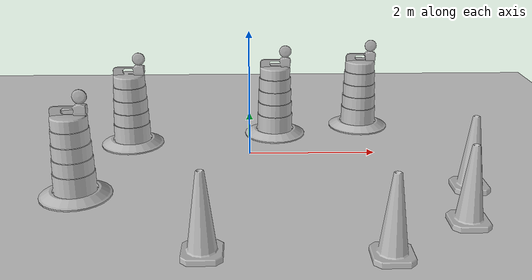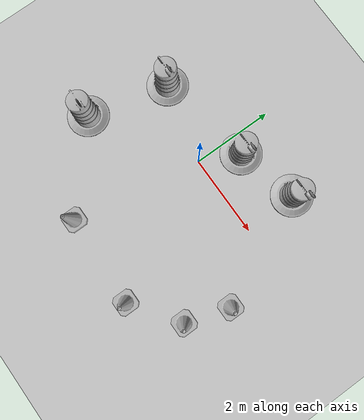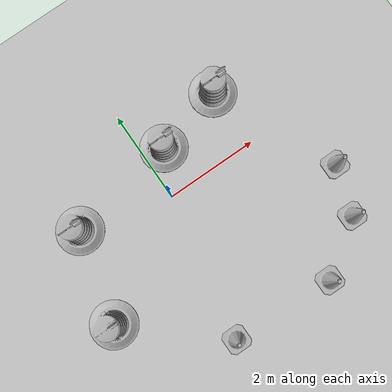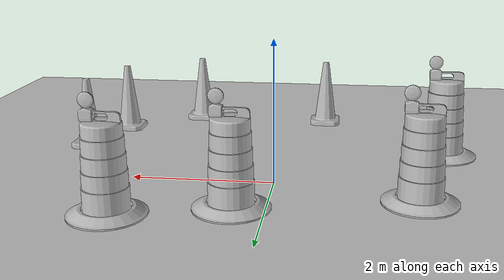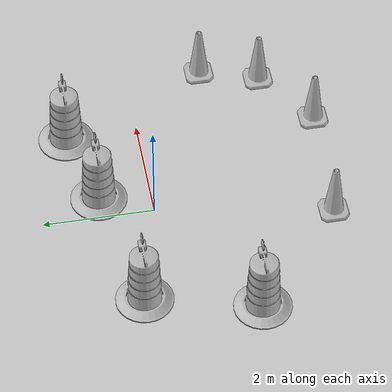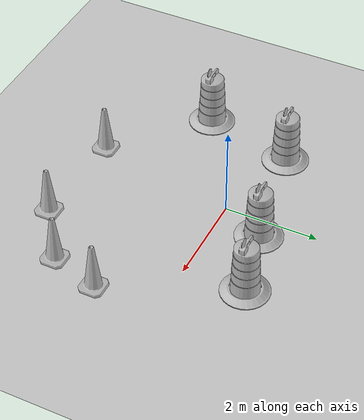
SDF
<sdf version="1.7">
 <world name="default">
  <light name="sun" type="directional">
   <pose>0 0 10 0 -0 0</pose>
   <diffuse>0.8 0.8 0.8 1</diffuse>
   <specular>0.2 0.2 0.2 1</specular>
   <attenuation>
    <range>1000</range>
    <constant>0.9</constant>
    <linear>0.01</linear>
    <quadratic>0.001</quadratic>
   </attenuation>
   <direction>-0.5 0.1 -0.9</direction>
   <spot><inner_angle>0</inner_angle><outer_angle>0</outer_angle><falloff>0</falloff></spot>
  </light>
  <model name="ground_plane">
   <static>1</static>
   <link name="link">
    <collision name="collision">
     <geometry><plane><normal>0 0 1</normal><size>100 100</size></plane></geometry>
     <surface>
      <contact><collide_bitmask>65535</collide_bitmask></contact>
      <friction><ode><mu>100</mu><mu2>50</mu2></ode></friction>
     </surface>
    </collision>
    <visual name="visual">
     <cast_shadows>0</cast_shadows>
     <geometry><plane><normal>0 0 1</normal><size>100 100</size></plane></geometry>
     <material>
      <script><uri>file://media/materials/scripts/gazebo.material</uri><name>Gazebo/Grey</name></script>
     </material>
    </visual>
   </link>
  </model>
  <gravity>0 0 -9.8</gravity>
  <magnetic_field>6e-06 2.3e-05 -4.2e-05</magnetic_field>
  <atmosphere type="adiabatic"/>
  <physics type="ode">
   <max_step_size>0.001</max_step_size>
   <real_time_factor>1</real_time_factor>
   <real_time_update_rate>1000</real_time_update_rate>
  </physics>
  <scene><ambient>0.4 0.4 0.4 1</ambient><background>0.7 0.7 0.7 1</background><shadows>1</shadows></scene>
  <audio><device>default</device></audio>
  <spherical_coordinates>
   <surface_model>EARTH_WGS84</surface_model>
   <latitude_deg>0</latitude_deg>
   <longitude_deg>0</longitude_deg>
   <elevation>0</elevation>
   <heading_deg>0</heading_deg>
  </spherical_coordinates>
  <model name="Construction Barrel">
   <link name="link">
    <inertial>
     <pose>0 0 0.4 0 -0 0</pose>
     <mass>500</mass>
     <inertia><ixx>51.2096</ixx><iyy>51.2096</iyy><izz>25</izz><ixy>0</ixy><ixz>0</ixz><iyz>0</iyz></inertia>
    </inertial>
    <collision name="collision">
     <geometry><mesh><uri>model://construction_barrel/meshes/construction_barrel.dae</uri></mesh></geometry>
    </collision>
    <visual name="visual">
     <geometry><mesh><uri>model://construction_barrel/meshes/construction_barrel.dae</uri></mesh></geometry>
    </visual>
   </link>
   <pose>0.433809 0.928904 0 0 0 -1.5e-05</pose>
  </model>
  <model name="Construction Barrel_0">
   <link name="link">
    <inertial>
     <pose>0 0 0.4 0 -0 0</pose>
     <mass>500</mass>
     <inertia><ixx>51.2096</ixx><iyy>51.2096</iyy><izz>25</izz><ixy>0</ixy><ixz>0</ixz><iyz>0</iyz></inertia>
    </inertial>
    <collision name="collision">
     <geometry><mesh><uri>model://construction_barrel/meshes/construction_barrel.dae</uri></mesh></geometry>
    </collision>
    <visual name="visual">
     <geometry><mesh><uri>model://construction_barrel/meshes/construction_barrel.dae</uri></mesh></geometry>
    </visual>
   </link>
   <pose>1.92485 1.30045 -0 1e-06 -1e-06 -1.2e-05</pose>
  </model>
  <model name="Construction Cone">
   <link name="link">
    <collision name="collision">
     <geometry>
      <mesh><scale>10 10 10</scale><uri>model://construction_cone/meshes/construction_cone.dae</uri></mesh>
     </geometry>
    </collision>
    <visual name="visual">
     <geometry>
      <mesh><scale>10 10 10</scale><uri>model://construction_cone/meshes/construction_cone.dae</uri></mesh>
     </geometry>
    </visual>
    <inertial>
     <inertia><ixx>1</ixx><ixy>0</ixy><ixz>0</ixz><iyy>1</iyy><iyz>0</iyz><izz>1</izz></inertia>
     <mass>1</mass>
    </inertial>
   </link>
   <pose>3.14115 -1.37092 -9e-06 0 -0 0</pose>
  </model>
  <model name="Construction Cone_0">
   <link name="link">
    <collision name="collision">
     <geometry>
      <mesh><scale>10 10 10</scale><uri>model://construction_cone/meshes/construction_cone.dae</uri></mesh>
     </geometry>
    </collision>
    <visual name="visual">
     <geometry>
      <mesh><scale>10 10 10</scale><uri>model://construction_cone/meshes/construction_cone.dae</uri></mesh>
     </geometry>
    </visual>
    <inertial>
     <inertia><ixx>1</ixx><ixy>0</ixy><ixz>0</ixz><iyy>1</iyy><iyz>0</iyz><izz>1</izz></inertia>
     <mass>1</mass>
    </inertial>
   </link>
   <pose>2.81021 -2.43133 -0 0 -1e-06 0</pose>
  </model>
  <model name="Construction Barrel_1">
   <link name="link">
    <inertial>
     <pose>0 0 0.4 0 -0 0</pose>
     <mass>500</mass>
     <inertia><ixx>51.2096</ixx><iyy>51.2096</iyy><izz>25</izz><ixy>0</ixy><ixz>0</ixz><iyz>0</iyz></inertia>
    </inertial>
    <collision name="collision">
     <geometry><mesh><uri>model://construction_barrel/meshes/construction_barrel.dae</uri></mesh></geometry>
    </collision>
    <visual name="visual">
     <geometry><mesh><uri>model://construction_barrel/meshes/construction_barrel.dae</uri></mesh></geometry>
    </visual>
   </link>
   <pose>-1.94464 0.491915 -1e-06 3e-06 1e-05 -7e-06</pose>
  </model>
  <model name="Construction Barrel_2">
   <link name="link">
    <inertial>
     <pose>0 0 0.4 0 -0 0</pose>
     <mass>500</mass>
     <inertia><ixx>51.2096</ixx><iyy>51.2096</iyy><izz>25</izz><ixy>0</ixy><ixz>0</ixz><iyz>0</iyz></inertia>
    </inertial>
    <collision name="collision">
     <geometry><mesh><uri>model://construction_barrel/meshes/construction_barrel.dae</uri></mesh></geometry>
    </collision>
    <visual name="visual">
     <geometry><mesh><uri>model://construction_barrel/meshes/construction_barrel.dae</uri></mesh></geometry>
    </visual>
   </link>
   <pose>-2.43808 -1.481 1e-06 2e-06 3e-06 -6e-06</pose>
  </model>
  <model name="Construction Cone_1">
   <link name="link">
    <collision name="collision">
     <geometry>
      <mesh><scale>10 10 10</scale><uri>model://construction_cone/meshes/construction_cone.dae</uri></mesh>
     </geometry>
    </collision>
    <visual name="visual">
     <geometry>
      <mesh><scale>10 10 10</scale><uri>model://construction_cone/meshes/construction_cone.dae</uri></mesh>
     </geometry>
    </visual>
    <inertial>
     <inertia><ixx>1</ixx><ixy>0</ixy><ixz>0</ixz><iyy>1</iyy><iyz>0</iyz><izz>1</izz></inertia>
     <mass>1</mass>
    </inertial>
   </link>
   <pose>-0.568391 -3.13555 -0 0 -0 0</pose>
  </model>
  <model name="Construction Cone_2">
   <link name="link">
    <collision name="collision">
     <geometry>
      <mesh><scale>10 10 10</scale><uri>model://construction_cone/meshes/construction_cone.dae</uri></mesh>
     </geometry>
    </collision>
    <visual name="visual">
     <geometry>
      <mesh><scale>10 10 10</scale><uri>model://construction_cone/meshes/construction_cone.dae</uri></mesh>
     </geometry>
    </visual>
    <inertial>
     <inertia><ixx>1</ixx><ixy>0</ixy><ixz>0</ixz><iyy>1</iyy><iyz>0</iyz><izz>1</izz></inertia>
     <mass>1</mass>
    </inertial>
   </link>
   <pose>1.66838 -3.23896 -0 0 -1e-06 0</pose>
  </model>
 </world>
</sdf>
